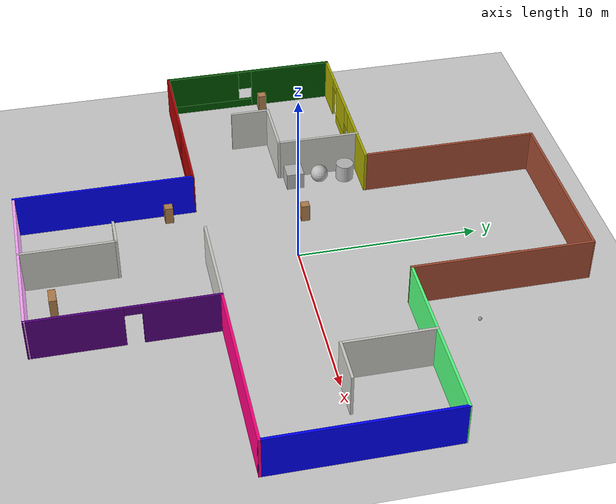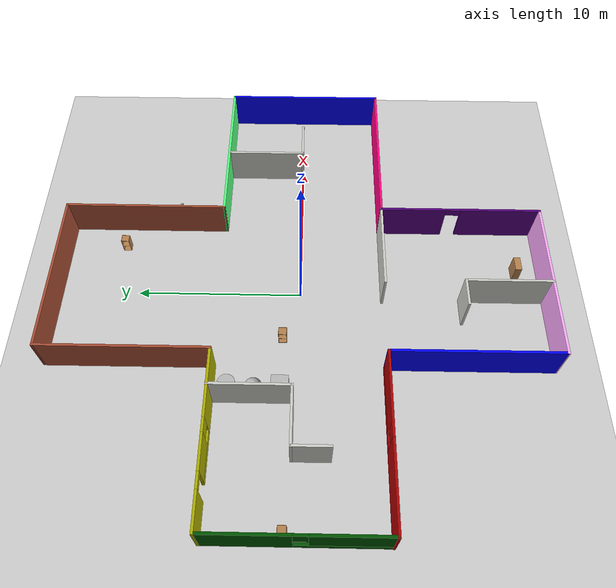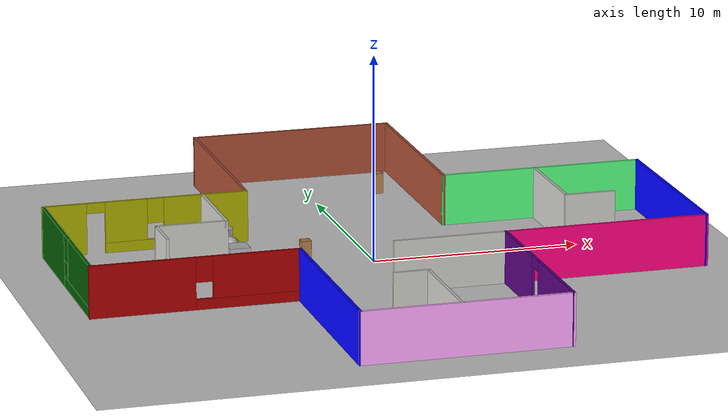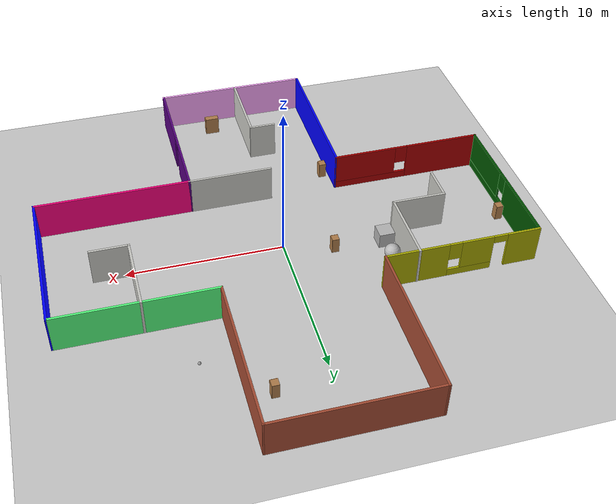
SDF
<sdf version="1.6">
 <world name="default">
  <plugin name="sumWelcome" filename="libsumWelcome.so"/>
  <light name="sun" type="directional">
   <pose>0 0 10 0 -0 0</pose>
   <diffuse>0.8 0.8 0.8 1</diffuse>
   <specular>0.2 0.2 0.2 1</specular>
   <attenuation>
    <range>1000</range>
    <constant>0.9</constant>
    <linear>0.01</linear>
    <quadratic>0.001</quadratic>
   </attenuation>
   <direction>-0.5 0.1 -0.9</direction>
  </light>
  <model name="ground_plane">
   <static>1</static>
   <link name="link">
    <collision name="collision">
     <geometry><plane><normal>0 0 1</normal><size>100 100</size></plane></geometry>
     <surface><friction><ode><mu>100</mu><mu2>50</mu2></ode></friction></surface>
    </collision>
    <visual name="visual">
     <cast_shadows>0</cast_shadows>
     <geometry><plane><normal>0 0 1</normal><size>100 100</size></plane></geometry>
     <material>
      <script><uri>file://media/materials/scripts/gazebo.material</uri><name>Gazebo/Grey</name></script>
     </material>
    </visual>
   </link>
  </model>
  <gravity>0 0 -9.8</gravity>
  <magnetic_field>6e-06 2.3e-05 -4.2e-05</magnetic_field>
  <atmosphere type="adiabatic"/>
  <physics name="default_physics" default="0" type="ode">
   <max_step_size>0.001</max_step_size>
   <real_time_factor>1</real_time_factor>
   <real_time_update_rate>1000</real_time_update_rate>
  </physics>
  <scene><ambient>0.4 0.4 0.4 1</ambient><background>0.7 0.7 0.7 1</background><shadows>1</shadows></scene>
  <spherical_coordinates>
   <surface_model>EARTH_WGS84</surface_model>
   <latitude_deg>0</latitude_deg>
   <longitude_deg>0</longitude_deg>
   <elevation>0</elevation>
   <heading_deg>0</heading_deg>
  </spherical_coordinates>
  <model name="SumBuilding">
   <link name="Wall_1">
    <collision name="Wall_1_Collision">
     <geometry><box><size>10 0.15 2.5</size></box></geometry>
     <pose>0 0 1.25 0 -0 0</pose>
    </collision>
    <visual name="Wall_1_Visual">
     <pose>0 0 1.25 0 -0 0</pose>
     <geometry><box><size>10 0.15 2.5</size></box></geometry>
     <material>
      <script><uri>file://media/materials/scripts/gazebo.material</uri><name>Gazebo/Bricks</name></script>
      <ambient>0 1 0 1</ambient>
     </material>
     <meta><layer>0</layer></meta>
    </visual>
    <pose>0.013093 14.7751 0 0 0 -0.003397</pose>
   </link>
   <link name="Wall_11">
    <pose>-9.85305 -4.92335 0 0 -0 0</pose>
    <visual name="Wall_11_Visual_0">
     <pose>-2.50345 0 1.25 0 -0 0</pose>
     <geometry><box><size>4.99311 0.15 2.5</size></box></geometry>
     <material>
      <script><uri>file://media/materials/scripts/gazebo.material</uri><name>Gazebo/Grey</name></script>
      <ambient>0.666667 0 0 1</ambient>
     </material>
     <meta><layer>0</layer></meta>
    </visual>
    <collision name="Wall_11_Collision_0">
     <geometry><box><size>4.99311 0.15 2.5</size></box></geometry>
     <pose>-2.50345 0 1.25 0 -0 0</pose>
    </collision>
    <visual name="Wall_11_Visual_1">
     <pose>2.49655 0 0.25 0 -0 0</pose>
     <geometry><box><size>5.00689 0.15 0.5</size></box></geometry>
     <material>
      <script><uri>file://media/materials/scripts/gazebo.material</uri><name>Gazebo/Grey</name></script>
      <ambient>0.666667 0 0 1</ambient>
     </material>
     <meta><layer>0</layer></meta>
    </visual>
    <collision name="Wall_11_Collision_1">
     <geometry><box><size>5.00689 0.15 0.5</size></box></geometry>
     <pose>2.49655 0 0.25 0 -0 0</pose>
    </collision>
    <visual name="Wall_11_Visual_2">
     <pose>2.89655 0 1.5 0 -0 0</pose>
     <geometry><box><size>4.20689 0.15 2</size></box></geometry>
     <material>
      <script><uri>file://media/materials/scripts/gazebo.material</uri><name>Gazebo/Grey</name></script>
      <ambient>0.666667 0 0 1</ambient>
     </material>
     <meta><layer>0</layer></meta>
    </visual>
    <collision name="Wall_11_Collision_2">
     <geometry><box><size>4.20689 0.15 2</size></box></geometry>
     <pose>2.89655 0 1.5 0 -0 0</pose>
    </collision>
    <visual name="Wall_11_Visual_3">
     <pose>0.393106 0 1.9 0 -0 0</pose>
     <geometry><box><size>0.8 0.15 1.2</size></box></geometry>
     <material>
      <script><uri>file://media/materials/scripts/gazebo.material</uri><name>Gazebo/Grey</name></script>
      <ambient>0.666667 0 0 1</ambient>
     </material>
     <meta><layer>0</layer></meta>
    </visual>
    <collision name="Wall_11_Collision_3">
     <geometry><box><size>0.8 0.15 1.2</size></box></geometry>
     <pose>0.393106 0 1.9 0 -0 0</pose>
    </collision>
   </link>
   <link name="Wall_13">
    <collision name="Wall_13_Collision">
     <geometry><box><size>10 0.15 2.5</size></box></geometry>
     <pose>0 0 1.25 0 -0 0</pose>
    </collision>
    <visual name="Wall_13_Visual">
     <pose>0 0 1.25 0 -0 0</pose>
     <geometry><box><size>10 0.15 2.5</size></box></geometry>
     <material>
      <script><uri>file://media/materials/scripts/gazebo.material</uri><name>Gazebo/Grey</name></script>
      <ambient>0 0 1 1</ambient>
     </material>
     <meta><layer>0</layer></meta>
    </visual>
    <pose>-4.92501 -9.84834 0 0 0 -1.57018</pose>
   </link>
   <link name="Wall_15">
    <collision name="Wall_15_Collision">
     <geometry><box><size>10 0.15 2.5</size></box></geometry>
     <pose>0 0 1.25 0 -0 0</pose>
    </collision>
    <visual name="Wall_15_Visual">
     <pose>0 0 1.25 0 -0 0</pose>
     <geometry><box><size>10 0.15 2.5</size></box></geometry>
     <material>
      <script><uri>file://media/materials/scripts/gazebo.material</uri><name>Gazebo/Grey</name></script>
      <ambient>1 0.666667 1 1</ambient>
     </material>
     <meta><layer>0</layer></meta>
    </visual>
    <pose>0.003026 -14.7827 0 0 0 -0.001891</pose>
   </link>
   <link name="Wall_17">
    <pose>4.92801 -9.86697 0 0 -0 1.5708</pose>
    <visual name="Wall_17_Visual_0">
     <pose>-2.50628 0 1.25 0 -0 0</pose>
     <geometry><box><size>4.98743 0.15 2.5</size></box></geometry>
     <material>
      <script><uri>file://media/materials/scripts/gazebo.material</uri><name>Gazebo/Grey</name></script>
      <ambient>0.333333 0 0.498039 1</ambient>
     </material>
     <meta><layer>0</layer></meta>
    </visual>
    <collision name="Wall_17_Collision_0">
     <geometry><box><size>4.98743 0.15 2.5</size></box></geometry>
     <pose>-2.50628 0 1.25 0 -0 0</pose>
    </collision>
    <visual name="Wall_17_Visual_1">
     <pose>2.94372 0 1.25 0 -0 0</pose>
     <geometry><box><size>4.11257 0.15 2.5</size></box></geometry>
     <material>
      <script><uri>file://media/materials/scripts/gazebo.material</uri><name>Gazebo/Grey</name></script>
      <ambient>0.333333 0 0.498039 1</ambient>
     </material>
     <meta><layer>0</layer></meta>
    </visual>
    <collision name="Wall_17_Collision_1">
     <geometry><box><size>4.11257 0.15 2.5</size></box></geometry>
     <pose>2.94372 0 1.25 0 -0 0</pose>
    </collision>
    <visual name="Wall_17_Visual_2">
     <pose>0.437432 0 2.25 0 -0 0</pose>
     <geometry><box><size>0.9 0.15 0.5</size></box></geometry>
     <material>
      <script><uri>file://media/materials/scripts/gazebo.material</uri><name>Gazebo/Grey</name></script>
      <ambient>0.333333 0 0.498039 1</ambient>
     </material>
     <meta><layer>0</layer></meta>
    </visual>
    <collision name="Wall_17_Collision_2">
     <geometry><box><size>0.9 0.15 0.5</size></box></geometry>
     <pose>0.437432 0 2.25 0 -0 0</pose>
    </collision>
   </link>
   <link name="Wall_19">
    <collision name="Wall_19_Collision">
     <geometry><box><size>10 0.15 2.5</size></box></geometry>
     <pose>0 0 1.25 0 -0 0</pose>
    </collision>
    <visual name="Wall_19_Visual">
     <pose>0 0 1.25 0 -0 0</pose>
     <geometry><box><size>10 0.15 2.5</size></box></geometry>
     <material>
      <script><uri>file://media/materials/scripts/gazebo.material</uri><name>Gazebo/Grey</name></script>
      <ambient>1 0 0.498039 1</ambient>
     </material>
     <meta><layer>0</layer></meta>
    </visual>
    <pose>9.85301 -4.94178 0 0 -0 3.8e-05</pose>
   </link>
   <link name="Wall_21">
    <collision name="Wall_21_Collision">
     <geometry><box><size>10 0.15 2.5</size></box></geometry>
     <pose>0 0 1.25 0 -0 0</pose>
    </collision>
    <visual name="Wall_21_Visual">
     <pose>0 0 1.25 0 -0 0</pose>
     <geometry><box><size>10 0.15 2.5</size></box></geometry>
     <material>
      <script><uri>file://media/materials/scripts/gazebo.material</uri><name>Gazebo/Grey</name></script>
      <ambient>0 0 1 1</ambient>
     </material>
     <meta><layer>0</layer></meta>
    </visual>
    <pose>14.7753 -0.016591 0 0 -0 1.57134</pose>
   </link>
   <link name="Wall_23">
    <collision name="Wall_23_Collision">
     <geometry><box><size>10 0.15 2.5</size></box></geometry>
     <pose>0 0 1.25 0 -0 0</pose>
    </collision>
    <visual name="Wall_23_Visual">
     <pose>0 0 1.25 0 -0 0</pose>
     <geometry><box><size>10 0.15 2.5</size></box></geometry>
     <material>
      <script><uri>file://media/materials/scripts/gazebo.material</uri><name>Gazebo/Grey</name></script>
      <ambient>0.333333 1 0.498039 1</ambient>
     </material>
     <meta><layer>0</layer></meta>
    </visual>
    <pose>9.84762 4.90841 0 0 -0 3.14159</pose>
   </link>
   <link name="Wall_27">
    <collision name="Wall_27_Collision">
     <geometry><box><size>10 0.15 2.5</size></box></geometry>
     <pose>0 0 1.25 0 -0 0</pose>
    </collision>
    <visual name="Wall_27_Visual">
     <pose>0 0 1.25 0 -0 0</pose>
     <geometry><box><size>10 0.15 2.5</size></box></geometry>
     <material>
      <script><uri>file://media/materials/scripts/gazebo.material</uri><name>Gazebo/Bricks</name></script>
      <ambient>1 1 0 1</ambient>
     </material>
     <meta><layer>0</layer></meta>
    </visual>
    <pose>4.93035 9.8334 0 0 -0 1.56923</pose>
   </link>
   <link name="Wall_29">
    <collision name="Wall_29_Collision">
     <geometry><box><size>5 0.15 2.5</size></box></geometry>
     <pose>0 0 1.25 0 -0 0</pose>
    </collision>
    <visual name="Wall_29_Visual">
     <pose>0 0 1.25 0 -0 0</pose>
     <geometry><box><size>5 0.15 2.5</size></box></geometry>
     <material>
      <script><uri>file://media/materials/scripts/gazebo.material</uri><name>Gazebo/CeilingTiled</name></script>
      <ambient>0.333333 0.333333 1 1</ambient>
     </material>
     <meta><layer>0</layer></meta>
    </visual>
    <pose>9.53345 2.48414 0 0 0 -1.5708</pose>
   </link>
   <link name="Wall_3">
    <collision name="Wall_3_Collision">
     <geometry><box><size>10 0.15 2.5</size></box></geometry>
     <pose>0 0 1.25 0 -0 0</pose>
    </collision>
    <visual name="Wall_3_Visual">
     <pose>0 0 1.25 0 -0 0</pose>
     <geometry><box><size>10 0.15 2.5</size></box></geometry>
     <material>
      <script><uri>file://media/materials/scripts/gazebo.material</uri><name>Gazebo/Bricks</name></script>
      <ambient>0.666667 0.333333 0 1</ambient>
     </material>
     <meta><layer>0</layer></meta>
    </visual>
    <pose>-4.91188 9.86685 0 0 0 -1.5708</pose>
   </link>
   <link name="Wall_30">
    <collision name="Wall_30_Collision">
     <geometry><box><size>2.5 0.15 2.5</size></box></geometry>
     <pose>0 0 1.25 0 -0 0</pose>
    </collision>
    <visual name="Wall_30_Visual">
     <pose>0 0 1.25 0 -0 0</pose>
     <geometry><box><size>2.5 0.15 2.5</size></box></geometry>
     <material>
      <script><uri>file://media/materials/scripts/gazebo.material</uri><name>Gazebo/CeilingTiled</name></script>
      <ambient>0.333333 0.333333 1 1</ambient>
     </material>
     <meta><layer>0</layer></meta>
    </visual>
    <pose>10.7084 0.059135 0 0 -0 0</pose>
   </link>
   <link name="Wall_32">
    <collision name="Wall_32_Collision">
     <geometry><box><size>5.25 0.15 2.5</size></box></geometry>
     <pose>0 0 1.25 0 -0 0</pose>
    </collision>
    <visual name="Wall_32_Visual">
     <pose>0 0 1.25 0 -0 0</pose>
     <geometry><box><size>5.25 0.15 2.5</size></box></geometry>
     <material>
      <script><uri>file://media/materials/scripts/gazebo.material</uri><name>Gazebo/CeilingTiled</name></script>
      <ambient>0.333333 0.666667 1 1</ambient>
     </material>
     <meta><layer>0</layer></meta>
    </visual>
    <pose>-0.257513 -12.2298 0 0 -0 1.5708</pose>
   </link>
   <link name="Wall_33">
    <collision name="Wall_33_Collision">
     <geometry><box><size>1.75 0.15 2.5</size></box></geometry>
     <pose>0 0 1.25 0 -0 0</pose>
    </collision>
    <visual name="Wall_33_Visual">
     <pose>0 0 1.25 0 -0 0</pose>
     <geometry><box><size>1.75 0.15 2.5</size></box></geometry>
     <material>
      <script><uri>file://media/materials/scripts/gazebo.material</uri><name>Gazebo/CeilingTiled</name></script>
      <ambient>0.333333 0 0.498039 1</ambient>
     </material>
     <meta><layer>0</layer></meta>
    </visual>
    <pose>-1.05751 -9.67979 0 0 -0 3.14159</pose>
   </link>
   <link name="Wall_35">
    <collision name="Wall_35_Collision">
     <geometry><box><size>5.5 0.15 2.5</size></box></geometry>
     <pose>0 0 1.25 0 -0 0</pose>
    </collision>
    <visual name="Wall_35_Visual">
     <pose>0 0 1.25 0 -0 0</pose>
     <geometry><box><size>5.5 0.15 2.5</size></box></geometry>
     <material>
      <script><uri>file://media/materials/scripts/gazebo.material</uri><name>Gazebo/CeilingTiled</name></script>
      <ambient>1 0.666667 0 1</ambient>
     </material>
     <meta><layer>0</layer></meta>
    </visual>
    <pose>2.25301 -4.94197 0 0 -0 3.14159</pose>
   </link>
   <link name="Wall_37">
    <collision name="Wall_37_Collision">
     <geometry><box><size>4.75 0.15 2.5</size></box></geometry>
     <pose>0 0 1.25 0 -0 0</pose>
    </collision>
    <visual name="Wall_37_Visual">
     <pose>0 0 1.25 0 -0 0</pose>
     <geometry><box><size>4.75 0.15 2.5</size></box></geometry>
     <material>
      <script><uri>file://media/materials/scripts/gazebo.material</uri><name>Gazebo/CeilingTiled</name></script>
      <ambient>0.666667 0 1 1</ambient>
     </material>
     <meta><layer>0</layer></meta>
    </visual>
    <pose>-7.05233 2.66264 0 0 0 -1.5708</pose>
   </link>
   <link name="Wall_38">
    <collision name="Wall_38_Collision">
     <geometry><box><size>3.5 0.15 2.5</size></box></geometry>
     <pose>0 0 1.25 0 -0 0</pose>
    </collision>
    <visual name="Wall_38_Visual">
     <pose>0 0 1.25 0 -0 0</pose>
     <geometry><box><size>3.5 0.15 2.5</size></box></geometry>
     <material>
      <script><uri>file://media/materials/scripts/gazebo.material</uri><name>Gazebo/CeilingTiled</name></script>
      <ambient>0.666667 0 1 1</ambient>
     </material>
     <meta><layer>0</layer></meta>
    </visual>
    <pose>-8.72733 0.362638 0 0 -0 3.14159</pose>
   </link>
   <link name="Wall_39">
    <collision name="Wall_39_Collision">
     <geometry><box><size>2.25 0.15 2.5</size></box></geometry>
     <pose>0 0 1.25 0 -0 0</pose>
    </collision>
    <visual name="Wall_39_Visual">
     <pose>0 0 1.25 0 -0 0</pose>
     <geometry><box><size>2.25 0.15 2.5</size></box></geometry>
     <material>
      <script><uri>file://media/materials/scripts/gazebo.material</uri><name>Gazebo/CeilingTiled</name></script>
      <ambient>0.666667 0 1 1</ambient>
     </material>
     <meta><layer>0</layer></meta>
    </visual>
    <pose>-10.4023 -0.687362 0 0 0 -1.5708</pose>
   </link>
   <link name="Wall_7">
    <pose>-9.83688 4.94185 0 0 -0 3.14159</pose>
    <visual name="Wall_7_Visual_0">
     <pose>-2.94197 0 1.25 0 -0 0</pose>
     <geometry><box><size>4.11606 0.15 2.5</size></box></geometry>
     <material>
      <script><uri>file://media/materials/scripts/gazebo.material</uri><name>Gazebo/Grey</name></script>
      <ambient>0.666667 0.666667 0 1</ambient>
     </material>
     <meta><layer>0</layer></meta>
    </visual>
    <collision name="Wall_7_Collision_0">
     <geometry><box><size>4.11606 0.15 2.5</size></box></geometry>
     <pose>-2.94197 0 1.25 0 -0 0</pose>
    </collision>
    <visual name="Wall_7_Visual_1">
     <pose>3.9276 0 1.25 0 -0 0</pose>
     <geometry><box><size>2.14481 0.15 2.5</size></box></geometry>
     <material>
      <script><uri>file://media/materials/scripts/gazebo.material</uri><name>Gazebo/Grey</name></script>
      <ambient>0.666667 0.666667 0 1</ambient>
     </material>
     <meta><layer>0</layer></meta>
    </visual>
    <collision name="Wall_7_Collision_1">
     <geometry><box><size>2.14481 0.15 2.5</size></box></geometry>
     <pose>3.9276 0 1.25 0 -0 0</pose>
    </collision>
    <visual name="Wall_7_Visual_2">
     <pose>0.535626 0 0.25 0 -0 0</pose>
     <geometry><box><size>2.83914 0.15 0.5</size></box></geometry>
     <material>
      <script><uri>file://media/materials/scripts/gazebo.material</uri><name>Gazebo/Grey</name></script>
      <ambient>0.666667 0.666667 0 1</ambient>
     </material>
     <meta><layer>0</layer></meta>
    </visual>
    <collision name="Wall_7_Collision_2">
     <geometry><box><size>2.83914 0.15 0.5</size></box></geometry>
     <pose>0.535626 0 0.25 0 -0 0</pose>
    </collision>
    <visual name="Wall_7_Visual_3">
     <pose>0.935626 0 1.5 0 -0 0</pose>
     <geometry><box><size>2.03913 0.15 2</size></box></geometry>
     <material>
      <script><uri>file://media/materials/scripts/gazebo.material</uri><name>Gazebo/Grey</name></script>
      <ambient>0.666667 0.666667 0 1</ambient>
     </material>
     <meta><layer>0</layer></meta>
    </visual>
    <collision name="Wall_7_Collision_3">
     <geometry><box><size>2.03913 0.15 2</size></box></geometry>
     <pose>0.935626 0 1.5 0 -0 0</pose>
    </collision>
    <visual name="Wall_7_Visual_4">
     <pose>-0.483942 0 1.9 0 -0 0</pose>
     <geometry><box><size>0.8 0.15 1.2</size></box></geometry>
     <material>
      <script><uri>file://media/materials/scripts/gazebo.material</uri><name>Gazebo/Grey</name></script>
      <ambient>0.666667 0.666667 0 1</ambient>
     </material>
     <meta><layer>0</layer></meta>
    </visual>
    <collision name="Wall_7_Collision_4">
     <geometry><box><size>0.8 0.15 1.2</size></box></geometry>
     <pose>-0.483942 0 1.9 0 -0 0</pose>
    </collision>
    <visual name="Wall_7_Visual_5">
     <pose>2.40519 0 2.25 0 -0 0</pose>
     <geometry><box><size>0.9 0.15 0.5</size></box></geometry>
     <material>
      <script><uri>file://media/materials/scripts/gazebo.material</uri><name>Gazebo/Grey</name></script>
      <ambient>0.666667 0.666667 0 1</ambient>
     </material>
     <meta><layer>0</layer></meta>
    </visual>
    <collision name="Wall_7_Collision_5">
     <geometry><box><size>0.9 0.15 0.5</size></box></geometry>
     <pose>2.40519 0 2.25 0 -0 0</pose>
    </collision>
   </link>
   <link name="Wall_9">
    <pose>-14.7619 0.016854 0 0 0 -1.5708</pose>
    <visual name="Wall_9_Visual_0">
     <pose>-2.57802 0 1.25 0 -0 0</pose>
     <geometry><box><size>4.84396 0.15 2.5</size></box></geometry>
     <material>
      <script><uri>file://media/materials/scripts/gazebo.material</uri><name>Gazebo/Grey</name></script>
      <ambient>0 0.333333 0 1</ambient>
     </material>
     <meta><layer>0</layer></meta>
    </visual>
    <collision name="Wall_9_Collision_0">
     <geometry><box><size>4.84396 0.15 2.5</size></box></geometry>
     <pose>-2.57802 0 1.25 0 -0 0</pose>
    </collision>
    <visual name="Wall_9_Visual_1">
     <pose>2.42198 0 0.25 0 -0 0</pose>
     <geometry><box><size>5.15604 0.15 0.5</size></box></geometry>
     <material>
      <script><uri>file://media/materials/scripts/gazebo.material</uri><name>Gazebo/Grey</name></script>
      <ambient>0 0.333333 0 1</ambient>
     </material>
     <meta><layer>0</layer></meta>
    </visual>
    <collision name="Wall_9_Collision_1">
     <geometry><box><size>5.15604 0.15 0.5</size></box></geometry>
     <pose>2.42198 0 0.25 0 -0 0</pose>
    </collision>
    <visual name="Wall_9_Visual_2">
     <pose>2.82198 0 1.5 0 -0 0</pose>
     <geometry><box><size>4.35604 0.15 2</size></box></geometry>
     <material>
      <script><uri>file://media/materials/scripts/gazebo.material</uri><name>Gazebo/Grey</name></script>
      <ambient>0 0.333333 0 1</ambient>
     </material>
     <meta><layer>0</layer></meta>
    </visual>
    <collision name="Wall_9_Collision_2">
     <geometry><box><size>4.35604 0.15 2</size></box></geometry>
     <pose>2.82198 0 1.5 0 -0 0</pose>
    </collision>
    <visual name="Wall_9_Visual_3">
     <pose>0.243959 0 1.9 0 -0 0</pose>
     <geometry><box><size>0.8 0.15 1.2</size></box></geometry>
     <material>
      <script><uri>file://media/materials/scripts/gazebo.material</uri><name>Gazebo/Grey</name></script>
      <ambient>0 0.333333 0 1</ambient>
     </material>
     <meta><layer>0</layer></meta>
    </visual>
    <collision name="Wall_9_Collision_3">
     <geometry><box><size>0.8 0.15 1.2</size></box></geometry>
     <pose>0.243959 0 1.9 0 -0 0</pose>
    </collision>
   </link>
   <static>1</static>
  </model>
  <model name="cabinet">
   <static>1</static>
   <link name="cabinet_bottom_plate">
    <inertial>
     <pose>0 0 -1 0 -0 0</pose>
     <inertia><ixx>2.05</ixx><ixy>0</ixy><ixz>0</ixz><iyy>2.05</iyy><iyz>0</iyz><izz>2.05</izz></inertia>
     <mass>25</mass>
    </inertial>
    <collision name="cabinet_bottom_plate_geom">
     <pose>0 0 0.01 0 -0 0</pose>
     <geometry><box><size>0.45 0.45 0.02</size></box></geometry>
    </collision>
    <visual name="cabinet_bottom_plate_geom_visual">
     <pose>0 0 0.01 0 -0 0</pose>
     <geometry><box><size>0.45 0.45 0.02</size></box></geometry>
     <material>
      <script><uri>file://media/materials/scripts/gazebo.material</uri><name>Gazebo/Wood</name></script>
     </material>
    </visual>
    <collision name="cabinet_bottom_plate_geom_cabinet_back_plate">
     <pose>0.235 0 0.51 0 -0 0</pose>
     <geometry><box><size>0.02 0.45 1.02</size></box></geometry>
    </collision>
    <visual name="cabinet_bottom_plate_geom_cabinet_back_plate_visual">
     <pose>0.235 0 0.51 0 -0 0</pose>
     <geometry><box><size>0.02 0.45 1.02</size></box></geometry>
     <material>
      <script><uri>file://media/materials/scripts/gazebo.material</uri><name>Gazebo/Wood</name></script>
     </material>
    </visual>
    <collision name="cabinet_bottom_plate_geom_cabinet_left_plate">
     <pose>0 0.235 0.51 0 -0 0</pose>
     <geometry><box><size>0.45 0.02 1.02</size></box></geometry>
    </collision>
    <visual name="cabinet_bottom_plate_geom_cabinet_left_plate_visual">
     <pose>0 0.235 0.51 0 -0 0</pose>
     <geometry><box><size>0.45 0.02 1.02</size></box></geometry>
     <material>
      <script><uri>file://media/materials/scripts/gazebo.material</uri><name>Gazebo/Wood</name></script>
     </material>
    </visual>
    <collision name="cabinet_bottom_plate_geom_cabinet_middle_plate">
     <pose>0 0 0.51 0 -0 0</pose>
     <geometry><box><size>0.45 0.45 0.02</size></box></geometry>
    </collision>
    <visual name="cabinet_bottom_plate_geom_cabinet_middle_plate_visual">
     <pose>0 0 0.51 0 -0 0</pose>
     <geometry><box><size>0.45 0.45 0.02</size></box></geometry>
     <material>
      <script><uri>file://media/materials/scripts/gazebo.material</uri><name>Gazebo/Wood</name></script>
     </material>
    </visual>
    <collision name="cabinet_bottom_plate_geom_cabinet_right_plate">
     <pose>0 -0.235 0.51 0 -0 0</pose>
     <geometry><box><size>0.45 0.02 1.02</size></box></geometry>
    </collision>
    <visual name="cabinet_bottom_plate_geom_cabinet_right_plate_visual">
     <pose>0 -0.235 0.51 0 -0 0</pose>
     <geometry><box><size>0.45 0.02 1.02</size></box></geometry>
     <material>
      <script><uri>file://media/materials/scripts/gazebo.material</uri><name>Gazebo/Wood</name></script>
     </material>
    </visual>
    <collision name="cabinet_bottom_plate_geom_cabinet_top_plate">
     <pose>0 0 1.01 0 -0 0</pose>
     <geometry><box><size>0.45 0.45 0.02</size></box></geometry>
    </collision>
    <visual name="cabinet_bottom_plate_geom_cabinet_top_plate_visual">
     <pose>0 0 1.01 0 -0 0</pose>
     <geometry><box><size>0.45 0.45 0.02</size></box></geometry>
     <material>
      <script><uri>file://media/materials/scripts/gazebo.material</uri><name>Gazebo/Wood</name></script>
     </material>
    </visual>
   </link>
   <pose>-14.2316 0.715744 0 0 -0 0</pose>
  </model>
  <model name="my_ball">
   <link name="link_0">
    <inertial>
     <mass>1</mass>
     <inertia><ixx>0.1</ixx><ixy>0</ixy><ixz>0</ixz><iyy>0.1</iyy><iyz>0</iyz><izz>0.1</izz></inertia>
    </inertial>
    <visual name="visual">
     <geometry><sphere><radius>0.1</radius></sphere></geometry>
     <material>
      <lighting>1</lighting>
      <script><uri>file://media/materials/scripts/gazebo.material</uri><name>Gazebo/Grey</name></script>
      <shader type="pixel"><normal_map>__default__</normal_map></shader>
      <ambient>1 1 1 1</ambient>
      <diffuse>1 1 1 1</diffuse>
      <specular>1 1 1 1</specular>
      <emissive>1 1 1 1</emissive>
     </material>
    </visual>
    <collision name="collision">
     <geometry><sphere><radius>0.1</radius></sphere></geometry>
     <surface>
      <friction>
       <ode><mu>1</mu><mu2>1</mu2><fdir1>0 0 0</fdir1><slip1>0</slip1><slip2>0</slip2></ode>
       <torsional>
        <coefficient>1</coefficient>
        <patch_radius>0</patch_radius>
        <surface_radius>0</surface_radius>
        <use_patch_radius>1</use_patch_radius>
        <ode><slip>0</slip></ode>
       </torsional>
      </friction>
      <bounce><restitution_coefficient>0</restitution_coefficient><threshold>1e+06</threshold></bounce>
      <contact>
       <collide_without_contact>0</collide_without_contact>
       <collide_without_contact_bitmask>1</collide_without_contact_bitmask>
       <collide_bitmask>1</collide_bitmask>
       <ode>
        <soft_cfm>0</soft_cfm>
        <soft_erp>0.2</soft_erp>
        <kp>1e+13</kp>
        <kd>1</kd>
        <max_vel>0.01</max_vel>
        <min_depth>0</min_depth>
       </ode>
       <bullet>
        <split_impulse>1</split_impulse>
        <split_impulse_penetration_threshold>-0.01</split_impulse_penetration_threshold>
        <soft_cfm>0</soft_cfm>
        <soft_erp>0.2</soft_erp>
        <kp>1e+13</kp>
        <kd>1</kd>
       </bullet>
      </contact>
     </surface>
    </collision>
   </link>
   <static>0</static>
   <pose>6.96279 8.10881 0.1 0 -0 0</pose>
  </model>
  <model name="cabinet_clone_clone_clone_clone">
   <static>1</static>
   <link name="cabinet_bottom_plate">
    <inertial>
     <pose>0 0 -1 0 -0 0</pose>
     <inertia><ixx>2.05</ixx><ixy>0</ixy><ixz>0</ixz><iyy>2.05</iyy><iyz>0</iyz><izz>2.05</izz></inertia>
     <mass>25</mass>
    </inertial>
    <collision name="cabinet_bottom_plate_geom">
     <pose>0 0 0.01 0 -0 0</pose>
     <geometry><box><size>0.45 0.45 0.02</size></box></geometry>
    </collision>
    <visual name="cabinet_bottom_plate_geom_visual">
     <pose>0 0 0.01 0 -0 0</pose>
     <geometry><box><size>0.45 0.45 0.02</size></box></geometry>
     <material>
      <script><uri>file://media/materials/scripts/gazebo.material</uri><name>Gazebo/Wood</name></script>
     </material>
    </visual>
    <collision name="cabinet_bottom_plate_geom_cabinet_back_plate">
     <pose>0.235 0 0.51 0 -0 0</pose>
     <geometry><box><size>0.02 0.45 1.02</size></box></geometry>
    </collision>
    <visual name="cabinet_bottom_plate_geom_cabinet_back_plate_visual">
     <pose>0.235 0 0.51 0 -0 0</pose>
     <geometry><box><size>0.02 0.45 1.02</size></box></geometry>
     <material>
      <script><uri>file://media/materials/scripts/gazebo.material</uri><name>Gazebo/Wood</name></script>
     </material>
    </visual>
    <collision name="cabinet_bottom_plate_geom_cabinet_left_plate">
     <pose>0 0.235 0.51 0 -0 0</pose>
     <geometry><box><size>0.45 0.02 1.02</size></box></geometry>
    </collision>
    <visual name="cabinet_bottom_plate_geom_cabinet_left_plate_visual">
     <pose>0 0.235 0.51 0 -0 0</pose>
     <geometry><box><size>0.45 0.02 1.02</size></box></geometry>
     <material>
      <script><uri>file://media/materials/scripts/gazebo.material</uri><name>Gazebo/Wood</name></script>
     </material>
    </visual>
    <collision name="cabinet_bottom_plate_geom_cabinet_middle_plate">
     <pose>0 0 0.51 0 -0 0</pose>
     <geometry><box><size>0.45 0.45 0.02</size></box></geometry>
    </collision>
    <visual name="cabinet_bottom_plate_geom_cabinet_middle_plate_visual">
     <pose>0 0 0.51 0 -0 0</pose>
     <geometry><box><size>0.45 0.45 0.02</size></box></geometry>
     <material>
      <script><uri>file://media/materials/scripts/gazebo.material</uri><name>Gazebo/Wood</name></script>
     </material>
    </visual>
    <collision name="cabinet_bottom_plate_geom_cabinet_right_plate">
     <pose>0 -0.235 0.51 0 -0 0</pose>
     <geometry><box><size>0.45 0.02 1.02</size></box></geometry>
    </collision>
    <visual name="cabinet_bottom_plate_geom_cabinet_right_plate_visual">
     <pose>0 -0.235 0.51 0 -0 0</pose>
     <geometry><box><size>0.45 0.02 1.02</size></box></geometry>
     <material>
      <script><uri>file://media/materials/scripts/gazebo.material</uri><name>Gazebo/Wood</name></script>
     </material>
    </visual>
    <collision name="cabinet_bottom_plate_geom_cabinet_top_plate">
     <pose>0 0 1.01 0 -0 0</pose>
     <geometry><box><size>0.45 0.45 0.02</size></box></geometry>
    </collision>
    <visual name="cabinet_bottom_plate_geom_cabinet_top_plate_visual">
     <pose>0 0 1.01 0 -0 0</pose>
     <geometry><box><size>0.45 0.45 0.02</size></box></geometry>
     <material>
      <script><uri>file://media/materials/scripts/gazebo.material</uri><name>Gazebo/Wood</name></script>
     </material>
    </visual>
   </link>
   <pose>3.44225 11.1968 0 0 -0 0</pose>
  </model>
  <model name="cabinet_clone_clone_clone_clone_0">
   <static>1</static>
   <link name="cabinet_bottom_plate">
    <inertial>
     <pose>0 0 -1 0 -0 0</pose>
     <inertia><ixx>2.05</ixx><ixy>0</ixy><ixz>0</ixz><iyy>2.05</iyy><iyz>0</iyz><izz>2.05</izz></inertia>
     <mass>25</mass>
    </inertial>
    <collision name="cabinet_bottom_plate_geom">
     <pose>0 0 0.01 0 -0 0</pose>
     <geometry><box><size>0.45 0.45 0.02</size></box></geometry>
    </collision>
    <visual name="cabinet_bottom_plate_geom_visual">
     <pose>0 0 0.01 0 -0 0</pose>
     <geometry><box><size>0.45 0.45 0.02</size></box></geometry>
     <material>
      <script><uri>file://media/materials/scripts/gazebo.material</uri><name>Gazebo/Wood</name></script>
     </material>
    </visual>
    <collision name="cabinet_bottom_plate_geom_cabinet_back_plate">
     <pose>0.235 0 0.51 0 -0 0</pose>
     <geometry><box><size>0.02 0.45 1.02</size></box></geometry>
    </collision>
    <visual name="cabinet_bottom_plate_geom_cabinet_back_plate_visual">
     <pose>0.235 0 0.51 0 -0 0</pose>
     <geometry><box><size>0.02 0.45 1.02</size></box></geometry>
     <material>
      <script><uri>file://media/materials/scripts/gazebo.material</uri><name>Gazebo/Wood</name></script>
     </material>
    </visual>
    <collision name="cabinet_bottom_plate_geom_cabinet_left_plate">
     <pose>0 0.235 0.51 0 -0 0</pose>
     <geometry><box><size>0.45 0.02 1.02</size></box></geometry>
    </collision>
    <visual name="cabinet_bottom_plate_geom_cabinet_left_plate_visual">
     <pose>0 0.235 0.51 0 -0 0</pose>
     <geometry><box><size>0.45 0.02 1.02</size></box></geometry>
     <material>
      <script><uri>file://media/materials/scripts/gazebo.material</uri><name>Gazebo/Wood</name></script>
     </material>
    </visual>
    <collision name="cabinet_bottom_plate_geom_cabinet_middle_plate">
     <pose>0 0 0.51 0 -0 0</pose>
     <geometry><box><size>0.45 0.45 0.02</size></box></geometry>
    </collision>
    <visual name="cabinet_bottom_plate_geom_cabinet_middle_plate_visual">
     <pose>0 0 0.51 0 -0 0</pose>
     <geometry><box><size>0.45 0.45 0.02</size></box></geometry>
     <material>
      <script><uri>file://media/materials/scripts/gazebo.material</uri><name>Gazebo/Wood</name></script>
     </material>
    </visual>
    <collision name="cabinet_bottom_plate_geom_cabinet_right_plate">
     <pose>0 -0.235 0.51 0 -0 0</pose>
     <geometry><box><size>0.45 0.02 1.02</size></box></geometry>
    </collision>
    <visual name="cabinet_bottom_plate_geom_cabinet_right_plate_visual">
     <pose>0 -0.235 0.51 0 -0 0</pose>
     <geometry><box><size>0.45 0.02 1.02</size></box></geometry>
     <material>
      <script><uri>file://media/materials/scripts/gazebo.material</uri><name>Gazebo/Wood</name></script>
     </material>
    </visual>
    <collision name="cabinet_bottom_plate_geom_cabinet_top_plate">
     <pose>0 0 1.01 0 -0 0</pose>
     <geometry><box><size>0.45 0.45 0.02</size></box></geometry>
    </collision>
    <visual name="cabinet_bottom_plate_geom_cabinet_top_plate_visual">
     <pose>0 0 1.01 0 -0 0</pose>
     <geometry><box><size>0.45 0.45 0.02</size></box></geometry>
     <material>
      <script><uri>file://media/materials/scripts/gazebo.material</uri><name>Gazebo/Wood</name></script>
     </material>
    </visual>
   </link>
   <pose>-4.41942 -6.45119 0 0 -0 0</pose>
  </model>
  <model name="cabinet_clone_clone_clone_clone_0_clone_0_clone">
   <static>1</static>
   <link name="cabinet_bottom_plate">
    <inertial>
     <pose>0 0 -1 0 -0 0</pose>
     <inertia><ixx>2.05</ixx><ixy>0</ixy><ixz>0</ixz><iyy>2.05</iyy><iyz>0</iyz><izz>2.05</izz></inertia>
     <mass>25</mass>
    </inertial>
    <collision name="cabinet_bottom_plate_geom">
     <pose>0 0 0.01 0 -0 0</pose>
     <geometry><box><size>0.45 0.45 0.02</size></box></geometry>
    </collision>
    <visual name="cabinet_bottom_plate_geom_visual">
     <pose>0 0 0.01 0 -0 0</pose>
     <geometry><box><size>0.45 0.45 0.02</size></box></geometry>
     <material>
      <script><uri>file://media/materials/scripts/gazebo.material</uri><name>Gazebo/Wood</name></script>
     </material>
    </visual>
    <collision name="cabinet_bottom_plate_geom_cabinet_back_plate">
     <pose>0.235 0 0.51 0 -0 0</pose>
     <geometry><box><size>0.02 0.45 1.02</size></box></geometry>
    </collision>
    <visual name="cabinet_bottom_plate_geom_cabinet_back_plate_visual">
     <pose>0.235 0 0.51 0 -0 0</pose>
     <geometry><box><size>0.02 0.45 1.02</size></box></geometry>
     <material>
      <script><uri>file://media/materials/scripts/gazebo.material</uri><name>Gazebo/Wood</name></script>
     </material>
    </visual>
    <collision name="cabinet_bottom_plate_geom_cabinet_left_plate">
     <pose>0 0.235 0.51 0 -0 0</pose>
     <geometry><box><size>0.45 0.02 1.02</size></box></geometry>
    </collision>
    <visual name="cabinet_bottom_plate_geom_cabinet_left_plate_visual">
     <pose>0 0.235 0.51 0 -0 0</pose>
     <geometry><box><size>0.45 0.02 1.02</size></box></geometry>
     <material>
      <script><uri>file://media/materials/scripts/gazebo.material</uri><name>Gazebo/Wood</name></script>
     </material>
    </visual>
    <collision name="cabinet_bottom_plate_geom_cabinet_middle_plate">
     <pose>0 0 0.51 0 -0 0</pose>
     <geometry><box><size>0.45 0.45 0.02</size></box></geometry>
    </collision>
    <visual name="cabinet_bottom_plate_geom_cabinet_middle_plate_visual">
     <pose>0 0 0.51 0 -0 0</pose>
     <geometry><box><size>0.45 0.45 0.02</size></box></geometry>
     <material>
      <script><uri>file://media/materials/scripts/gazebo.material</uri><name>Gazebo/Wood</name></script>
     </material>
    </visual>
    <collision name="cabinet_bottom_plate_geom_cabinet_right_plate">
     <pose>0 -0.235 0.51 0 -0 0</pose>
     <geometry><box><size>0.45 0.02 1.02</size></box></geometry>
    </collision>
    <visual name="cabinet_bottom_plate_geom_cabinet_right_plate_visual">
     <pose>0 -0.235 0.51 0 -0 0</pose>
     <geometry><box><size>0.45 0.02 1.02</size></box></geometry>
     <material>
      <script><uri>file://media/materials/scripts/gazebo.material</uri><name>Gazebo/Wood</name></script>
     </material>
    </visual>
    <collision name="cabinet_bottom_plate_geom_cabinet_top_plate">
     <pose>0 0 1.01 0 -0 0</pose>
     <geometry><box><size>0.45 0.45 0.02</size></box></geometry>
    </collision>
    <visual name="cabinet_bottom_plate_geom_cabinet_top_plate_visual">
     <pose>0 0 1.01 0 -0 0</pose>
     <geometry><box><size>0.45 0.45 0.02</size></box></geometry>
     <material>
      <script><uri>file://media/materials/scripts/gazebo.material</uri><name>Gazebo/Wood</name></script>
     </material>
    </visual>
   </link>
   <pose>-3.05637 1.03018 0 0 -0 0</pose>
  </model>
  <model name="bookshelf_clone">
   <static>1</static>
   <link name="link">
    <inertial><mass>1</mass></inertial>
    <collision name="back">
     <pose>0 0.005 0.6 0 -0 0</pose>
     <geometry><box><size>0.9 0.01 1.2</size></box></geometry>
    </collision>
    <visual name="visual1">
     <pose>0 0.005 0.6 0 -0 0</pose>
     <geometry><box><size>0.9 0.01 1.2</size></box></geometry>
     <material>
      <script><uri>file://media/materials/scripts/gazebo.material</uri><name>Gazebo/Wood</name></script>
     </material>
    </visual>
    <collision name="left_side">
     <pose>0.45 -0.195 0.6 0 -0 0</pose>
     <geometry><box><size>0.02 0.4 1.2</size></box></geometry>
    </collision>
    <visual name="visual2">
     <pose>0.45 -0.195 0.6 0 -0 0</pose>
     <geometry><box><size>0.02 0.4 1.2</size></box></geometry>
     <material>
      <script><uri>file://media/materials/scripts/gazebo.material</uri><name>Gazebo/Wood</name></script>
     </material>
    </visual>
    <collision name="right_side">
     <pose>-0.45 -0.195 0.6 0 -0 0</pose>
     <geometry><box><size>0.02 0.4 1.2</size></box></geometry>
    </collision>
    <visual name="visual3">
     <pose>-0.45 -0.195 0.6 0 -0 0</pose>
     <geometry><box><size>0.02 0.4 1.2</size></box></geometry>
     <material>
      <script><uri>file://media/materials/scripts/gazebo.material</uri><name>Gazebo/Wood</name></script>
     </material>
    </visual>
    <collision name="bottom">
     <pose>0 -0.195 0.03 0 -0 0</pose>
     <geometry><box><size>0.88 0.4 0.06</size></box></geometry>
    </collision>
    <visual name="visual4">
     <pose>0 -0.195 0.03 0 -0 0</pose>
     <geometry><box><size>0.88 0.4 0.06</size></box></geometry>
     <material>
      <script><uri>file://media/materials/scripts/gazebo.material</uri><name>Gazebo/Wood</name></script>
     </material>
    </visual>
    <collision name="top">
     <pose>0 -0.195 1.19 0 -0 0</pose>
     <geometry><box><size>0.88 0.4 0.02</size></box></geometry>
    </collision>
    <visual name="visual5">
     <pose>0 -0.195 1.19 0 -0 0</pose>
     <geometry><box><size>0.88 0.4 0.02</size></box></geometry>
     <material>
      <script><uri>file://media/materials/scripts/gazebo.material</uri><name>Gazebo/Wood</name></script>
     </material>
    </visual>
    <collision name="low_shelf">
     <pose>0 -0.195 0.43 0 -0 0</pose>
     <geometry><box><size>0.88 0.4 0.02</size></box></geometry>
    </collision>
    <visual name="visual6">
     <pose>0 -0.195 0.43 0 -0 0</pose>
     <geometry><box><size>0.88 0.4 0.02</size></box></geometry>
     <material>
      <script><uri>file://media/materials/scripts/gazebo.material</uri><name>Gazebo/Wood</name></script>
     </material>
    </visual>
    <collision name="high_shelf">
     <pose>0 -0.195 0.8 0 -0 0</pose>
     <geometry><box><size>0.88 0.4 0.02</size></box></geometry>
    </collision>
    <visual name="visual7">
     <pose>0 -0.195 0.8 0 -0 0</pose>
     <geometry><box><size>0.88 0.4 0.02</size></box></geometry>
     <material>
      <script><uri>file://media/materials/scripts/gazebo.material</uri><name>Gazebo/Wood</name></script>
     </material>
    </visual>
   </link>
   <pose>1.81705 -13.1276 0 0 -0 0</pose>
  </model>
  <plugin name="collision_map_creator" filename="libcollision_map_creator.so"/>
  <model name="textured_shapes">
   <pose>-6.31476 2.59523 0.5 0 -0 0</pose>
   <link name="box">
    <pose>0 -1.5 0 0 -0 0</pose>
    <collision name="collision"><geometry><box><size>1 1 1</size></box></geometry></collision>
    <visual name="visual">
     <geometry><box><size>1 1 1</size></box></geometry>
     <material>
      <script>
       <uri>model://textured_shapes/materials/scripts</uri>
       <uri>model://textured_shapes/materials/textures</uri>
       <name>TexturedShape/Squares</name>
      </script>
     </material>
    </visual>
    <inertial>
     <inertia><ixx>1</ixx><ixy>0</ixy><ixz>0</ixz><iyy>1</iyy><iyz>0</iyz><izz>1</izz></inertia>
     <mass>1</mass>
    </inertial>
   </link>
   <link name="sphere">
    <collision name="collision"><geometry><sphere><radius>0.5</radius></sphere></geometry></collision>
    <visual name="visual">
     <geometry><sphere><radius>0.5</radius></sphere></geometry>
     <material>
      <script>
       <uri>model://textured_shapes/materials/scripts</uri>
       <uri>model://textured_shapes/materials/textures</uri>
       <name>TexturedShape/Squares</name>
      </script>
     </material>
    </visual>
    <inertial>
     <inertia><ixx>1</ixx><ixy>0</ixy><ixz>0</ixz><iyy>1</iyy><iyz>0</iyz><izz>1</izz></inertia>
     <mass>1</mass>
    </inertial>
   </link>
   <link name="cylinder">
    <pose>0 1.5 0 0 -0 0</pose>
    <collision name="collision">
     <geometry><cylinder><radius>0.5</radius><length>1</length></cylinder></geometry>
    </collision>
    <visual name="visual">
     <geometry><cylinder><radius>0.5</radius><length>1</length></cylinder></geometry>
     <material>
      <script>
       <uri>model://textured_shapes/materials/scripts</uri>
       <uri>model://textured_shapes/materials/textures</uri>
       <name>TexturedShape/Squares</name>
      </script>
     </material>
    </visual>
    <inertial>
     <inertia><ixx>1</ixx><ixy>0</ixy><ixz>0</ixz><iyy>1</iyy><iyz>0</iyz><izz>1</izz></inertia>
     <mass>1</mass>
    </inertial>
   </link>
  </model>
 </world>
</sdf>
